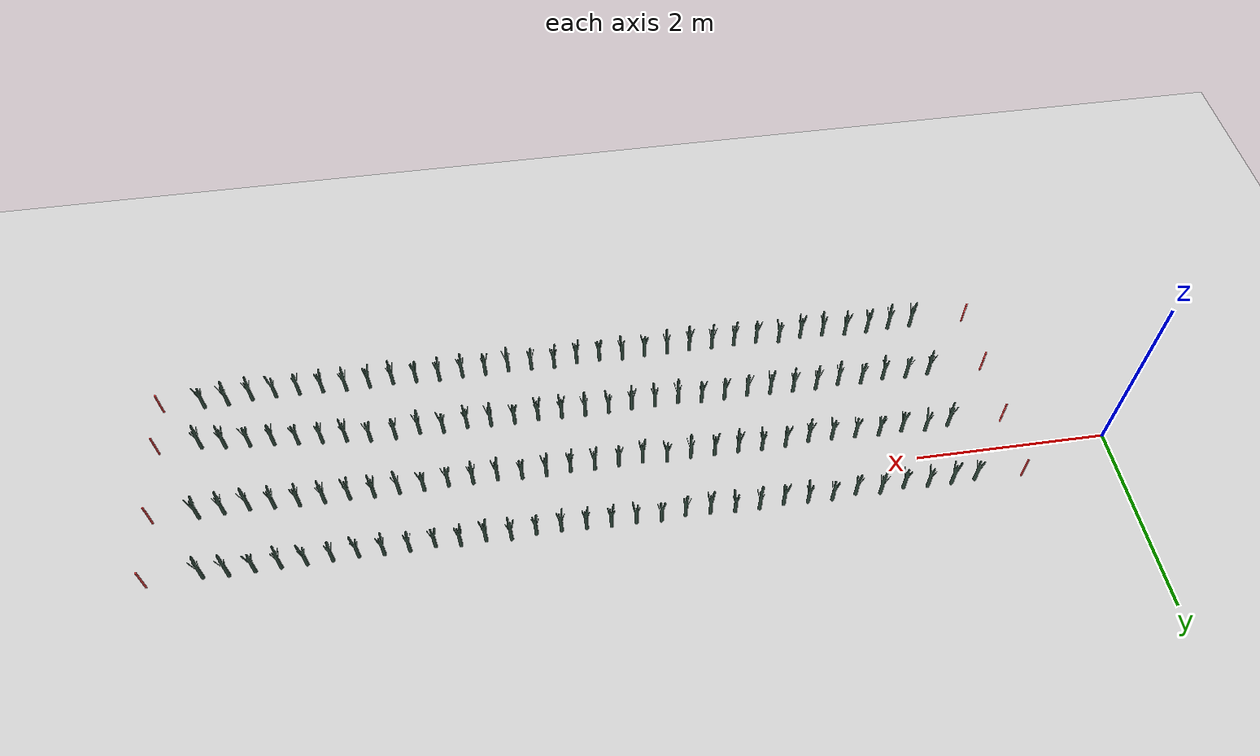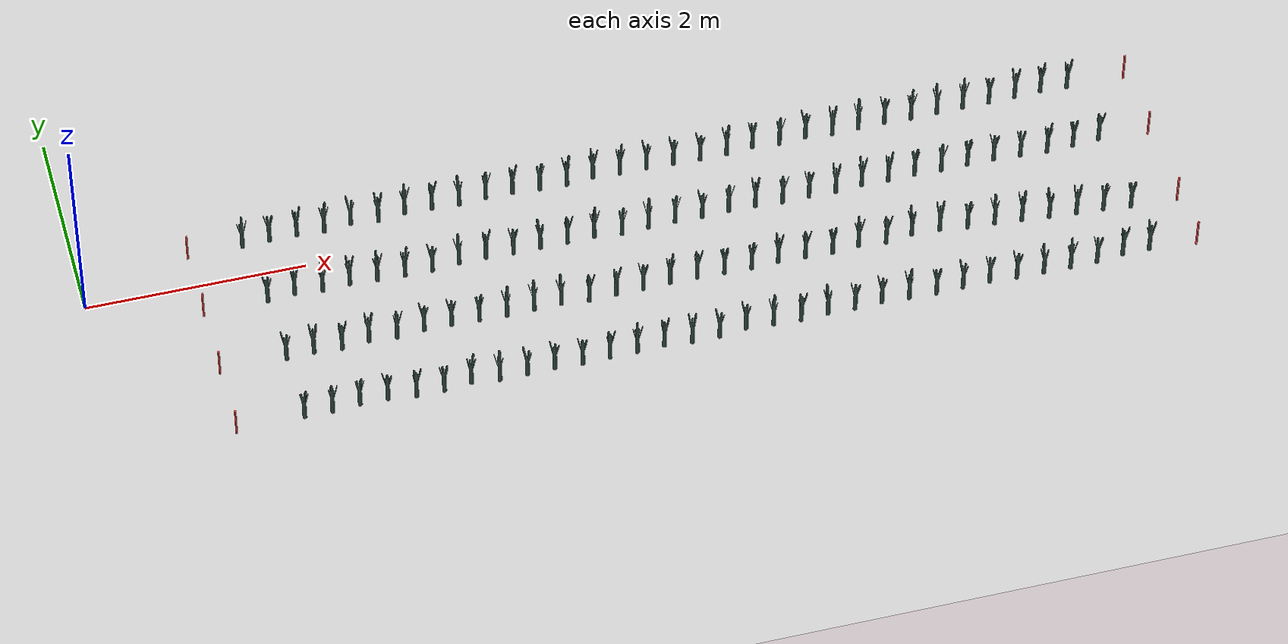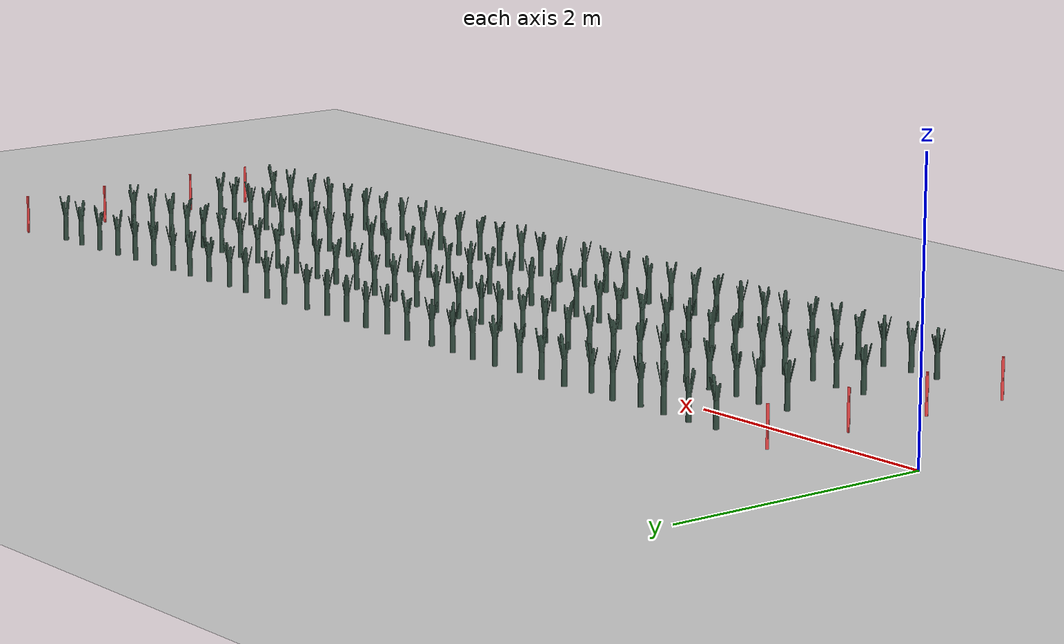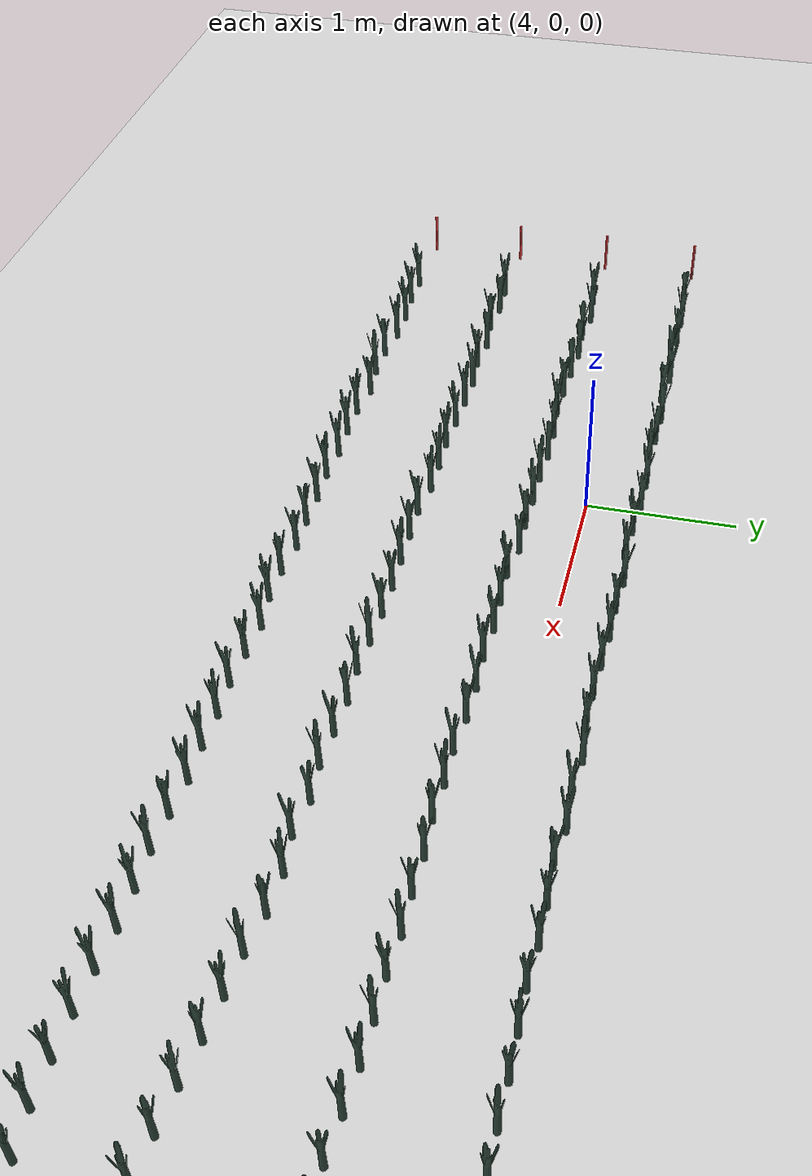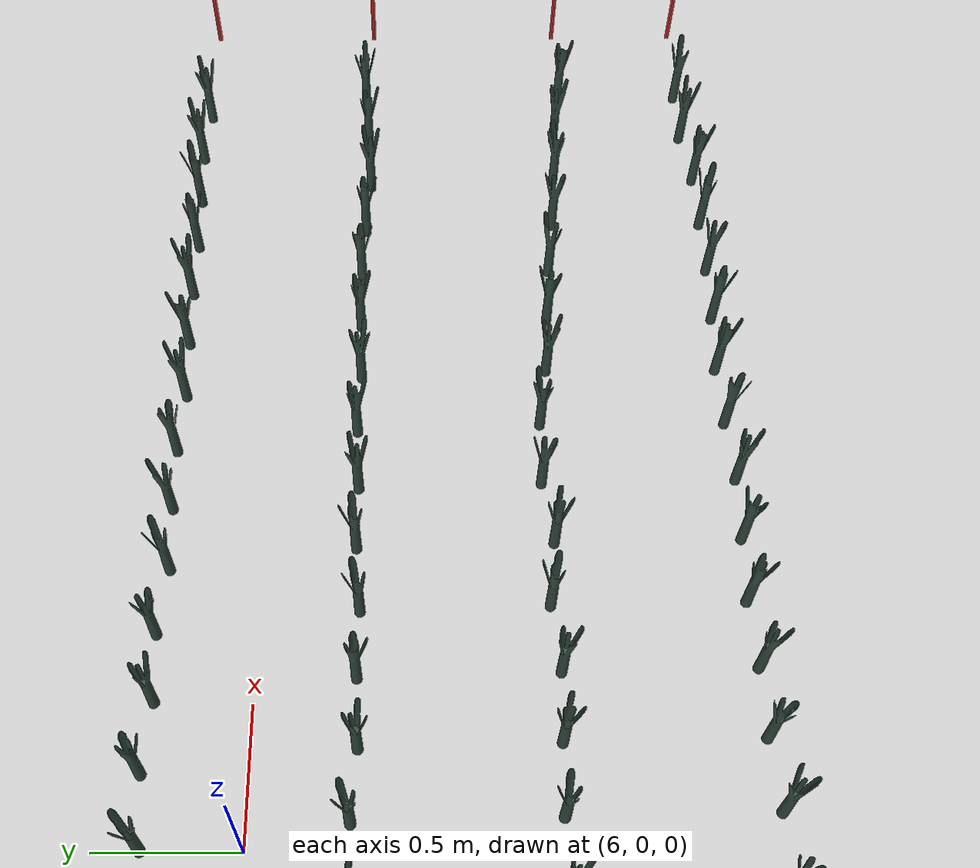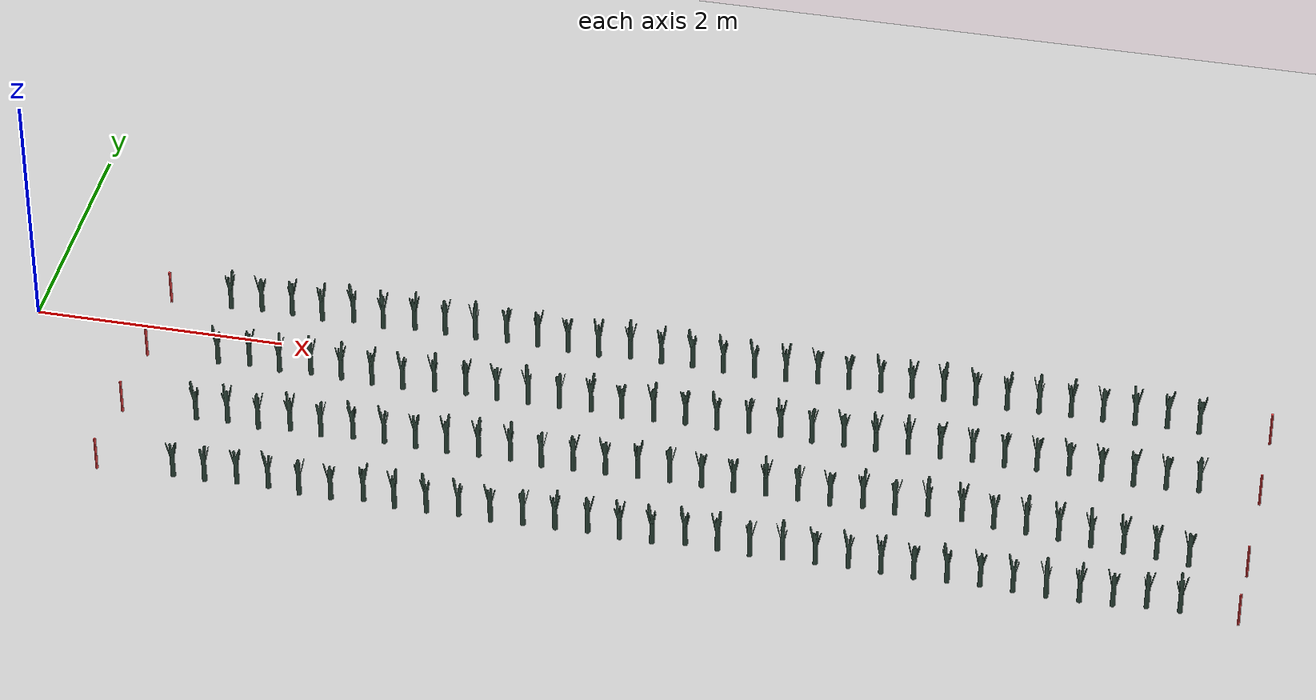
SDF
<sdf version="1.6">
 <world name="default">
  <light name="sun" type="directional">
   <pose>0 0 10 0 -0 0</pose>
   <diffuse>0.5 0.5 0.5 1</diffuse>
   <specular>0.1 0.1 0.1 1</specular>
   <attenuation>
    <range>1000</range>
    <constant>0.9</constant>
    <linear>0.01</linear>
    <quadratic>0.001</quadratic>
   </attenuation>
   <direction>0.9 0.5 -1</direction>
  </light>
  <scene><background>130 200 255 1</background><ambient>130 140 140 1</ambient></scene>
  <include><uri>model://sand_plane</uri></include>
  <include><uri>model://Red_stick</uri><pose>1.0 0.35 0.15 0 0 129.475108</pose><static>0</static></include>
  <include><uri>model://Red_stick</uri><pose>1.0 -0.35 0.15 0 0 129.475108</pose><static>0</static></include>
  <include><uri>model://Red_stick</uri><pose>1.0 -1.05 0.15 0 0 129.475108</pose><static>0</static></include>
  <include><uri>model://Red_stick</uri><pose>1.0 -1.75 0.15 0 0 129.475108</pose><static>0</static></include>
  <include>
   <uri>model://Leek</uri>
   <pose>1.500000 0.338799 0.15 0 0 -100.806769</pose>
   <static>0</static>
  </include>
  <include><uri>model://Leek</uri><pose>1.750000 0.352468 0.15 0 0 22.207644</pose><static>0</static></include>
  <include><uri>model://Leek</uri><pose>2.000000 0.350584 0.15 0 0 5.254806</pose><static>0</static></include>
  <include>
   <uri>model://Leek</uri>
   <pose>2.250000 0.333185 0.15 0 0 -151.336677</pose>
   <static>0</static>
  </include>
  <include><uri>model://Leek</uri><pose>2.500000 0.363527 0.15 0 0 121.743865</pose><static>0</static></include>
  <include>
   <uri>model://Leek</uri>
   <pose>2.750000 0.335390 0.15 0 0 -131.486809</pose>
   <static>0</static>
  </include>
  <include><uri>model://Leek</uri><pose>3.000000 0.366034 0.15 0 0 144.302812</pose><static>0</static></include>
  <include><uri>model://Leek</uri><pose>3.250000 0.358923 0.15 0 0 80.304871</pose><static>0</static></include>
  <include><uri>model://Leek</uri><pose>3.500000 0.346693 0.15 0 0 -29.762218</pose><static>0</static></include>
  <include><uri>model://Leek</uri><pose>3.750000 0.364436 0.15 0 0 129.927272</pose><static>0</static></include>
  <include><uri>model://Leek</uri><pose>4.000000 0.362435 0.15 0 0 111.916117</pose><static>0</static></include>
  <include><uri>model://Leek</uri><pose>4.250000 0.344145 0.15 0 0 -52.698355</pose><static>0</static></include>
  <include>
   <uri>model://Leek</uri>
   <pose>4.500000 0.334739 0.15 0 0 -137.345903</pose>
   <static>0</static>
  </include>
  <include><uri>model://Leek</uri><pose>4.750000 0.362580 0.15 0 0 113.218113</pose><static>0</static></include>
  <include><uri>model://Leek</uri><pose>5.000000 0.349923 0.15 0 0 -0.692977</pose><static>0</static></include>
  <include><uri>model://Leek</uri><pose>5.250000 0.351664 0.15 0 0 14.975839</pose><static>0</static></include>
  <include><uri>model://Leek</uri><pose>5.500000 0.340505 0.15 0 0 -85.453208</pose><static>0</static></include>
  <include>
   <uri>model://Leek</uri>
   <pose>5.750000 0.332137 0.15 0 0 -160.766345</pose>
   <static>0</static>
  </include>
  <include>
   <uri>model://Leek</uri>
   <pose>6.000000 0.334042 0.15 0 0 -143.619074</pose>
   <static>0</static>
  </include>
  <include><uri>model://Leek</uri><pose>6.250000 0.358055 0.15 0 0 72.492143</pose><static>0</static></include>
  <include>
   <uri>model://Leek</uri>
   <pose>6.500000 0.338594 0.15 0 0 -102.654704</pose>
   <static>0</static>
  </include>
  <include><uri>model://Leek</uri><pose>6.750000 0.355172 0.15 0 0 46.550610</pose><static>0</static></include>
  <include>
   <uri>model://Leek</uri>
   <pose>7.000000 0.330513 0.15 0 0 -175.384043</pose>
   <static>0</static>
  </include>
  <include><uri>model://Leek</uri><pose>7.250000 0.343861 0.15 0 0 -55.250097</pose><static>0</static></include>
  <include><uri>model://Leek</uri><pose>7.500000 0.349619 0.15 0 0 -3.431196</pose><static>0</static></include>
  <include>
   <uri>model://Leek</uri>
   <pose>7.750000 0.336670 0.15 0 0 -119.967704</pose>
   <static>0</static>
  </include>
  <include><uri>model://Leek</uri><pose>8.000000 0.345982 0.15 0 0 -36.158123</pose><static>0</static></include>
  <include><uri>model://Leek</uri><pose>8.250000 0.352738 0.15 0 0 24.645094</pose><static>0</static></include>
  <include><uri>model://Leek</uri><pose>8.500000 0.351068 0.15 0 0 9.614070</pose><static>0</static></include>
  <include><uri>model://Leek</uri><pose>8.750000 0.358417 0.15 0 0 75.756959</pose><static>0</static></include>
  <include><uri>model://Leek</uri><pose>9.000000 0.368036 0.15 0 0 162.322575</pose><static>0</static></include>
  <include><uri>model://Leek</uri><pose>9.250000 0.353362 0.15 0 0 30.256363</pose><static>0</static></include>
  <include>
   <uri>model://Leek</uri>
   <pose>1.582629 -0.355293 0.15 0 0 -47.634744</pose>
   <static>0</static>
  </include>
  <include>
   <uri>model://Leek</uri>
   <pose>1.832629 -0.330576 0.15 0 0 174.813507</pose>
   <static>0</static>
  </include>
  <include>
   <uri>model://Leek</uri>
   <pose>2.082629 -0.357680 0.15 0 0 -69.119000</pose>
   <static>0</static>
  </include>
  <include><uri>model://Leek</uri><pose>2.332629 -0.340187 0.15 0 0 88.319787</pose><static>0</static></include>
  <include>
   <uri>model://Leek</uri>
   <pose>2.582629 -0.354900 0.15 0 0 -44.096857</pose>
   <static>0</static>
  </include>
  <include>
   <uri>model://Leek</uri>
   <pose>2.832629 -0.365437 0.15 0 0 -138.932471</pose>
   <static>0</static>
  </include>
  <include>
   <uri>model://Leek</uri>
   <pose>3.082629 -0.369247 0.15 0 0 -173.224274</pose>
   <static>0</static>
  </include>
  <include><uri>model://Leek</uri><pose>3.332629 -0.344946 0.15 0 0 45.484116</pose><static>0</static></include>
  <include><uri>model://Leek</uri><pose>3.582629 -0.338962 0.15 0 0 99.337668</pose><static>0</static></include>
  <include><uri>model://Leek</uri><pose>3.832629 -0.349661 0.15 0 0 3.054134</pose><static>0</static></include>
  <include><uri>model://Leek</uri><pose>4.082629 -0.346987 0.15 0 0 27.113498</pose><static>0</static></include>
  <include><uri>model://Leek</uri><pose>4.332629 -0.348091 0.15 0 0 17.176634</pose><static>0</static></include>
  <include>
   <uri>model://Leek</uri>
   <pose>4.582629 -0.338176 0.15 0 0 106.416480</pose>
   <static>0</static>
  </include>
  <include>
   <uri>model://Leek</uri>
   <pose>4.832629 -0.368411 0.15 0 0 -165.696900</pose>
   <static>0</static>
  </include>
  <include>
   <uri>model://Leek</uri>
   <pose>5.082629 -0.355443 0.15 0 0 -48.986546</pose>
   <static>0</static>
  </include>
  <include><uri>model://Leek</uri><pose>5.332629 -0.346059 0.15 0 0 35.471055</pose><static>0</static></include>
  <include>
   <uri>model://Leek</uri>
   <pose>5.582629 -0.356005 0.15 0 0 -54.049020</pose>
   <static>0</static>
  </include>
  <include><uri>model://Leek</uri><pose>5.832629 -0.342547 0.15 0 0 67.074937</pose><static>0</static></include>
  <include><uri>model://Leek</uri><pose>6.082629 -0.344355 0.15 0 0 50.804179</pose><static>0</static></include>
  <include>
   <uri>model://Leek</uri>
   <pose>6.332629 -0.362782 0.15 0 0 -115.038840</pose>
   <static>0</static>
  </include>
  <include>
   <uri>model://Leek</uri>
   <pose>6.582629 -0.354548 0.15 0 0 -40.929093</pose>
   <static>0</static>
  </include>
  <include>
   <uri>model://Leek</uri>
   <pose>6.832629 -0.360431 0.15 0 0 -93.883223</pose>
   <static>0</static>
  </include>
  <include><uri>model://Leek</uri><pose>7.082629 -0.343005 0.15 0 0 62.957930</pose><static>0</static></include>
  <include><uri>model://Leek</uri><pose>7.332629 -0.345935 0.15 0 0 36.585569</pose><static>0</static></include>
  <include>
   <uri>model://Leek</uri>
   <pose>7.582629 -0.336333 0.15 0 0 123.002940</pose>
   <static>0</static>
  </include>
  <include><uri>model://Leek</uri><pose>7.832629 -0.347444 0.15 0 0 23.007650</pose><static>0</static></include>
  <include><uri>model://Leek</uri><pose>8.082629 -0.341229 0.15 0 0 78.934593</pose><static>0</static></include>
  <include><uri>model://Leek</uri><pose>8.332629 -0.340593 0.15 0 0 84.658924</pose><static>0</static></include>
  <include>
   <uri>model://Leek</uri>
   <pose>8.582629 -0.353140 0.15 0 0 -28.263553</pose>
   <static>0</static>
  </include>
  <include>
   <uri>model://Leek</uri>
   <pose>8.832629 -0.368969 0.15 0 0 -170.722878</pose>
   <static>0</static>
  </include>
  <include>
   <uri>model://Leek</uri>
   <pose>9.082629 -0.356606 0.15 0 0 -59.455535</pose>
   <static>0</static>
  </include>
  <include><uri>model://Leek</uri><pose>9.332629 -0.340413 0.15 0 0 86.286244</pose><static>0</static></include>
  <include>
   <uri>model://Leek</uri>
   <pose>1.599810 -1.056694 0.15 0 0 -60.245809</pose>
   <static>0</static>
  </include>
  <include><uri>model://Leek</uri><pose>1.849810 -1.044345 0.15 0 0 50.893689</pose><static>0</static></include>
  <include>
   <uri>model://Leek</uri>
   <pose>2.099810 -1.064117 0.15 0 0 -127.051872</pose>
   <static>0</static>
  </include>
  <include>
   <uri>model://Leek</uri>
   <pose>2.349810 -1.037370 0.15 0 0 113.672627</pose>
   <static>0</static>
  </include>
  <include>
   <uri>model://Leek</uri>
   <pose>2.599810 -1.057179 0.15 0 0 -64.611104</pose>
   <static>0</static>
  </include>
  <include>
   <uri>model://Leek</uri>
   <pose>2.849810 -1.032257 0.15 0 0 159.685602</pose>
   <static>0</static>
  </include>
  <include>
   <uri>model://Leek</uri>
   <pose>3.099810 -1.035721 0.15 0 0 128.514755</pose>
   <static>0</static>
  </include>
  <include><uri>model://Leek</uri><pose>3.349810 -1.044691 0.15 0 0 47.779270</pose><static>0</static></include>
  <include>
   <uri>model://Leek</uri>
   <pose>3.599810 -1.055448 0.15 0 0 -49.031728</pose>
   <static>0</static>
  </include>
  <include><uri>model://Leek</uri><pose>3.849810 -1.044953 0.15 0 0 45.423447</pose><static>0</static></include>
  <include><uri>model://Leek</uri><pose>4.099810 -1.040059 0.15 0 0 89.473005</pose><static>0</static></include>
  <include>
   <uri>model://Leek</uri>
   <pose>4.349810 -1.067642 0.15 0 0 -158.779696</pose>
   <static>0</static>
  </include>
  <include>
   <uri>model://Leek</uri>
   <pose>4.599810 -1.059222 0.15 0 0 -82.994426</pose>
   <static>0</static>
  </include>
  <include>
   <uri>model://Leek</uri>
   <pose>4.849810 -1.053852 0.15 0 0 -34.666841</pose>
   <static>0</static>
  </include>
  <include><uri>model://Leek</uri><pose>5.099810 -1.043811 0.15 0 0 55.703678</pose><static>0</static></include>
  <include><uri>model://Leek</uri><pose>5.349810 -1.042501 0.15 0 0 67.492219</pose><static>0</static></include>
  <include><uri>model://Leek</uri><pose>5.599810 -1.051011 0.15 0 0 -9.101064</pose><static>0</static></include>
  <include>
   <uri>model://Leek</uri>
   <pose>5.849810 -1.059352 0.15 0 0 -84.169177</pose>
   <static>0</static>
  </include>
  <include><uri>model://Leek</uri><pose>6.099810 -1.046495 0.15 0 0 31.541881</pose><static>0</static></include>
  <include>
   <uri>model://Leek</uri>
   <pose>6.349810 -1.054385 0.15 0 0 -39.469225</pose>
   <static>0</static>
  </include>
  <include>
   <uri>model://Leek</uri>
   <pose>6.599810 -1.064277 0.15 0 0 -128.493520</pose>
   <static>0</static>
  </include>
  <include><uri>model://Leek</uri><pose>6.849810 -1.039553 0.15 0 0 94.020867</pose><static>0</static></include>
  <include>
   <uri>model://Leek</uri>
   <pose>7.099810 -1.066245 0.15 0 0 -146.202800</pose>
   <static>0</static>
  </include>
  <include>
   <uri>model://Leek</uri>
   <pose>7.349810 -1.031656 0.15 0 0 165.096220</pose>
   <static>0</static>
  </include>
  <include>
   <uri>model://Leek</uri>
   <pose>7.610381 -1.038766 0.15 0 0 101.102944</pose>
   <static>0</static>
  </include>
  <include>
   <uri>model://Leek</uri>
   <pose>7.860381 -1.074475 0.15 0 0 -40.273589</pose>
   <static>0</static>
  </include>
  <include>
   <uri>model://Leek</uri>
   <pose>8.110381 -1.090295 0.15 0 0 177.347015</pose>
   <static>0</static>
  </include>
  <include>
   <uri>model://Leek</uri>
   <pose>8.360381 -1.11064 0.15 0 0 -162.576907</pose>
   <static>0</static>
  </include>
  <include>
   <uri>model://Leek</uri>
   <pose>8.610381 -1.137474 0.15 0 0 -67.270451</pose>
   <static>0</static>
  </include>
  <include><uri>model://Leek</uri><pose>8.860381 -1.15792 0.15 0 0 163.874588</pose><static>0</static></include>
  <include>
   <uri>model://Leek</uri>
   <pose>9.110381 -1.172382 0.15 0 0 -21.434881</pose>
   <static>0</static>
  </include>
  <include>
   <uri>model://Leek</uri>
   <pose>9.360381 -1.204962 0.15 0 0 135.339867</pose>
   <static>0</static>
  </include>
  <include><uri>model://Leek</uri><pose>1.610130 -1.748177 0.15 0 0 16.411031</pose><static>0</static></include>
  <include><uri>model://Leek</uri><pose>1.860130 -1.750895 0.15 0 0 -8.058257</pose><static>0</static></include>
  <include>
   <uri>model://Leek</uri>
   <pose>2.110130 -1.730026 0.15 0 0 179.768566</pose>
   <static>0</static>
  </include>
  <include>
   <uri>model://Leek</uri>
   <pose>2.360130 -1.731523 0.15 0 0 166.290844</pose>
   <static>0</static>
  </include>
  <include>
   <uri>model://Leek</uri>
   <pose>2.610130 -1.760634 0.15 0 0 -95.706363</pose>
   <static>0</static>
  </include>
  <include>
   <uri>model://Leek</uri>
   <pose>2.860130 -1.762887 0.15 0 0 -115.984373</pose>
   <static>0</static>
  </include>
  <include>
   <uri>model://Leek</uri>
   <pose>3.110130 -1.734027 0.15 0 0 143.759439</pose>
   <static>0</static>
  </include>
  <include>
   <uri>model://Leek</uri>
   <pose>3.360130 -1.765906 0.15 0 0 -143.158186</pose>
   <static>0</static>
  </include>
  <include>
   <uri>model://Leek</uri>
   <pose>3.610130 -1.764399 0.15 0 0 -129.586528</pose>
   <static>0</static>
  </include>
  <include>
   <uri>model://Leek</uri>
   <pose>3.860130 -1.754586 0.15 0 0 -41.277221</pose>
   <static>0</static>
  </include>
  <include>
   <uri>model://Leek</uri>
   <pose>4.110130 -1.767815 0.15 0 0 -160.333953</pose>
   <static>0</static>
  </include>
  <include>
   <uri>model://Leek</uri>
   <pose>4.360130 -1.757158 0.15 0 0 -64.420385</pose>
   <static>0</static>
  </include>
  <include>
   <uri>model://Leek</uri>
   <pose>4.610130 -1.755621 0.15 0 0 -50.592029</pose>
   <static>0</static>
  </include>
  <include><uri>model://Leek</uri><pose>4.860130 -1.743859 0.15 0 0 55.269660</pose><static>0</static></include>
  <include>
   <uri>model://Leek</uri>
   <pose>5.110130 -1.765994 0.15 0 0 -143.947196</pose>
   <static>0</static>
  </include>
  <include>
   <uri>model://Leek</uri>
   <pose>5.360130 -1.765098 0.15 0 0 -135.885520</pose>
   <static>0</static>
  </include>
  <include>
   <uri>model://Leek</uri>
   <pose>5.610130 -1.732965 0.15 0 0 153.314395</pose>
   <static>0</static>
  </include>
  <include><uri>model://Leek</uri><pose>5.860130 -1.748469 0.15 0 0 13.783167</pose><static>0</static></include>
  <include>
   <uri>model://Leek</uri>
   <pose>6.110130 -1.760647 0.15 0 0 -95.823494</pose>
   <static>0</static>
  </include>
  <include><uri>model://Leek</uri><pose>6.360130 -1.746323 0.15 0 0 33.091893</pose><static>0</static></include>
  <include><uri>model://Leek</uri><pose>6.610130 -1.750370 0.15 0 0 -3.328312</pose><static>0</static></include>
  <include><uri>model://Leek</uri><pose>6.860130 -1.739920 0.15 0 0 90.718396</pose><static>0</static></include>
  <include>
   <uri>model://Leek</uri>
   <pose>7.110130 -1.754084 0.15 0 0 -36.758341</pose>
   <static>0</static>
  </include>
  <include>
   <uri>model://Leek</uri>
   <pose>7.360130 -1.763592 0.15 0 0 -122.328142</pose>
   <static>0</static>
  </include>
  <include>
   <uri>model://Leek</uri>
   <pose>7.610130 -1.751836 0.15 0 0 -16.520089</pose>
   <static>0</static>
  </include>
  <include><uri>model://Leek</uri><pose>7.860130 -1.746161 0.15 0 0 34.548898</pose><static>0</static></include>
  <include>
   <uri>model://Leek</uri>
   <pose>8.110130 -1.760173 0.15 0 0 -91.552899</pose>
   <static>0</static>
  </include>
  <include>
   <uri>model://Leek</uri>
   <pose>8.360130 -1.767267 0.15 0 0 -155.400874</pose>
   <static>0</static>
  </include>
  <include>
   <uri>model://Leek</uri>
   <pose>8.610130 -1.767492 0.15 0 0 -157.427347</pose>
   <static>0</static>
  </include>
  <include>
   <uri>model://Leek</uri>
   <pose>8.860130 -1.763610 0.15 0 0 -122.490651</pose>
   <static>0</static>
  </include>
  <include>
   <uri>model://Leek</uri>
   <pose>9.110130 -1.734109 0.15 0 0 143.015500</pose>
   <static>0</static>
  </include>
  <include>
   <uri>model://Leek</uri>
   <pose>9.360130 -1.733935 0.15 0 0 144.586408</pose>
   <static>0</static>
  </include>
  <include><uri>model://Red_stick</uri><pose>9.8 0.364386 0.15 0 0 129.475108</pose><static>0</static></include>
  <include>
   <uri>model://Red_stick</uri>
   <pose>9.8 -0.364386 0.15 0 0 129.475108</pose>
   <static>0</static>
  </include>
  <include>
   <uri>model://Red_stick</uri>
   <pose>9.8 -1.204386 0.15 0 0 129.475108</pose>
   <static>0</static>
  </include>
  <include>
   <uri>model://Red_stick</uri>
   <pose>9.8 -1.754386 0.15 0 0 129.475108</pose>
   <static>0</static>
  </include>
 </world>
</sdf>

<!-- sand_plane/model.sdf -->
<sdf version="1.4">
<model name="sand_plane">
  <static>true</static>
    <link name="link">
      <collision name="collision">
        <geometry>
          <plane>
            <normal>0 0 1</normal>
            <size>100 100</size>
          </plane>
        </geometry>
        <surface>
          <friction>
            <ode>
              <mu>0.99</mu>
              <mu2>0.99</mu2>
            </ode>
          </friction>
        </surface>
      </collision>
      <visual name="visual">
        <cast_shadows>false</cast_shadows>
        <geometry>
          <plane>
            <normal>0 0 1</normal>
            <size>100 100</size>
          </plane>
        </geometry>
        <material>
          <script>
            <uri>model://ground_plane/materials/scripts/my_ground_plane.material</uri>
            <uri>model://ground_plane/materials/textures</uri>
            <name>my_ground_plane/Sand</name>
          </script>
        </material>
      </visual>
    </link>
  </model>
</sdf>

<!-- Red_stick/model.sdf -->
<sdf version='1.6'>
  <model name='Red_stick'>
    <link name='link'>
      <pose frame=''>0 0 0 0 -0 0</pose>
      <inertial>
        <mass>1</mass>
        <inertia>
          <ixx>0.145833</ixx>
          <ixy>0</ixy>
          <ixz>0</ixz>
          <iyy>0.145833</iyy>
          <iyz>0</iyz>
          <izz>0.125</izz>
        </inertia>
        <pose frame=''>0 0 0 0 -0 0</pose>
      </inertial>
      <self_collide>0</self_collide>
      <kinematic>0</kinematic>
      <gravity>1</gravity>
      <visual name='visual'>
        <geometry>
          <mesh>
            <uri>model://Red_stick/PiquetRouge.dae</uri>
            <scale>1 1 1</scale>
          </mesh>
        </geometry>
        <material>
          <script>
            <name>Gazebo/Grey</name>
            <uri>file://media/materials/scripts/gazebo.material</uri>
          </script>
          <ambient>0.7 0.1 0.1 1</ambient>
          <diffuse>1 0.3 0.3 1</diffuse>
          <specular>0.01 0.01 0.01 1</specular>
          <emissive>0 0 0 1</emissive>
          <shader type='vertex'>
            <normal_map>__default__</normal_map>
          </shader>
        </material>
        <pose frame=''>0 0 -0.08 0 -0 0</pose>
        <cast_shadows>1</cast_shadows>
        <transparency>0</transparency>
      </visual>
      <collision name='collision'>
        <laser_retro>0</laser_retro>
        <max_contacts>10</max_contacts>
        <pose frame=''>0 0 0 0 -0 0</pose>
        <geometry>
          <cylinder>
            <radius>0.01108</radius>
            <length>0.278243</length>
          </cylinder>
        </geometry>
        <surface>
          <friction>
            <ode>
              <mu>1</mu>
              <mu2>1</mu2>
              <fdir1>0 0 0</fdir1>
              <slip1>0</slip1>
              <slip2>0</slip2>
            </ode>
            <torsional>
              <coefficient>1</coefficient>
              <patch_radius>0</patch_radius>
              <surface_radius>0</surface_radius>
              <use_patch_radius>1</use_patch_radius>
              <ode>
                <slip>0</slip>
              </ode>
            </torsional>
          </friction>
          <bounce>
            <restitution_coefficient>0</restitution_coefficient>
            <threshold>1e+06</threshold>
          </bounce>
          <contact>
            <collide_without_contact>0</collide_without_contact>
            <collide_without_contact_bitmask>1</collide_without_contact_bitmask>
            <collide_bitmask>1</collide_bitmask>
            <ode>
              <soft_cfm>0</soft_cfm>
              <soft_erp>0.2</soft_erp>
              <kp>1e+13</kp>
              <kd>1</kd>
              <max_vel>0.01</max_vel>
              <min_depth>0</min_depth>
            </ode>
            <bullet>
              <split_impulse>1</split_impulse>
              <split_impulse_penetration_threshold>-0.01</split_impulse_penetration_threshold>
              <soft_cfm>0</soft_cfm>
              <soft_erp>0.2</soft_erp>
              <kp>1e+13</kp>
              <kd>1</kd>
            </bullet>
          </contact>
        </surface>
      </collision>
    </link>
    <static>0</static>
    <allow_auto_disable>1</allow_auto_disable>
  </model>
</sdf>

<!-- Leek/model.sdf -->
<sdf version='1.6'>
  <model name='Leek'>
    <link name='link'>
      <pose frame=''>0 0 0 0 -0 0</pose>
      <inertial>
        <mass>1</mass>
        <inertia>
          <ixx>0.145833</ixx>
          <ixy>0</ixy>
          <ixz>0</ixz>
          <iyy>0.145833</iyy>
          <iyz>0</iyz>
          <izz>0.125</izz>
        </inertia>
        <pose frame=''>0 0 0 0 -0 0</pose>
      </inertial>
      <self_collide>0</self_collide>
      <kinematic>0</kinematic>
      <gravity>1</gravity>
      <visual name='visual'>
        <geometry>
          <mesh>
            <uri>model://Leek/Poireau.dae</uri>
            <scale>1 1 1</scale>
          </mesh>
        </geometry>
        <material>
          <script>
            <name>Gazebo/Grey</name>
            <uri>file://media/materials/scripts/gazebo.material</uri>
          </script>
          <ambient>0.3 0.6 0.5 0</ambient>
          <diffuse>0.2 0.3 0.25 0</diffuse>
          <specular>0 0 0 1</specular>
          <emissive>0 0 0 1</emissive>
          <shader type='vertex'>
            <normal_map>__default__</normal_map>
          </shader>
        </material>
        <pose frame=''>0 0 -0.08 0 -0 0</pose>
        <cast_shadows>1</cast_shadows>
        <transparency>0</transparency>
      </visual>
      <collision name='collision'>
        <laser_retro>0</laser_retro>
        <max_contacts>10</max_contacts>
        <pose frame=''>0 0 0 0 -0 0</pose>
        <geometry>
          <cylinder>
            <radius>0.02</radius>
            <length>0.25</length>
          </cylinder>
        </geometry>
        <surface>
          <friction>
            <ode>
              <mu>1</mu>
              <mu2>1</mu2>
              <fdir1>0 0 0</fdir1>
              <slip1>0</slip1>
              <slip2>0</slip2>
            </ode>
            <torsional>
              <coefficient>1</coefficient>
              <patch_radius>0</patch_radius>
              <surface_radius>0</surface_radius>
              <use_patch_radius>1</use_patch_radius>
              <ode>
                <slip>0</slip>
              </ode>
            </torsional>
          </friction>
          <bounce>
            <restitution_coefficient>0</restitution_coefficient>
            <threshold>1e+06</threshold>
          </bounce>
          <contact>
            <collide_without_contact>0</collide_without_contact>
            <collide_without_contact_bitmask>1</collide_without_contact_bitmask>
            <collide_bitmask>1</collide_bitmask>
            <ode>
              <soft_cfm>0</soft_cfm>
              <soft_erp>0.2</soft_erp>
              <kp>1e+13</kp>
              <kd>1</kd>
              <max_vel>0.01</max_vel>
              <min_depth>0</min_depth>
            </ode>
            <bullet>
              <split_impulse>1</split_impulse>
              <split_impulse_penetration_threshold>-0.01</split_impulse_penetration_threshold>
              <soft_cfm>0</soft_cfm>
              <soft_erp>0.2</soft_erp>
              <kp>1e+13</kp>
              <kd>1</kd>
            </bullet>
          </contact>
        </surface>
      </collision>
    </link>
    <static>0</static>
    <allow_auto_disable>1</allow_auto_disable>
  </model>
</sdf>
